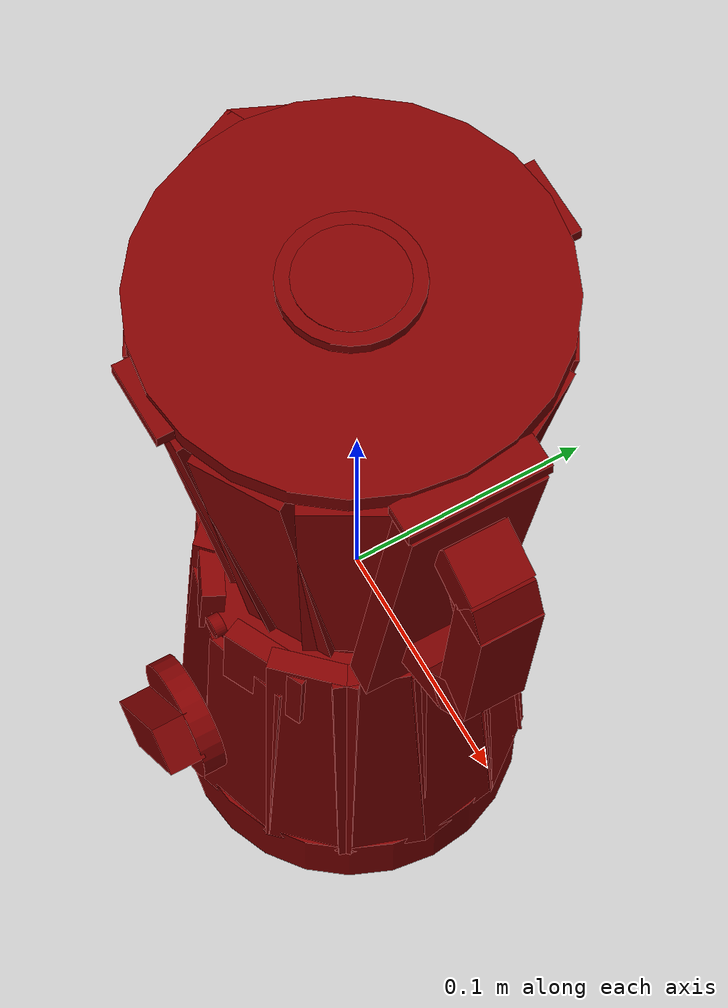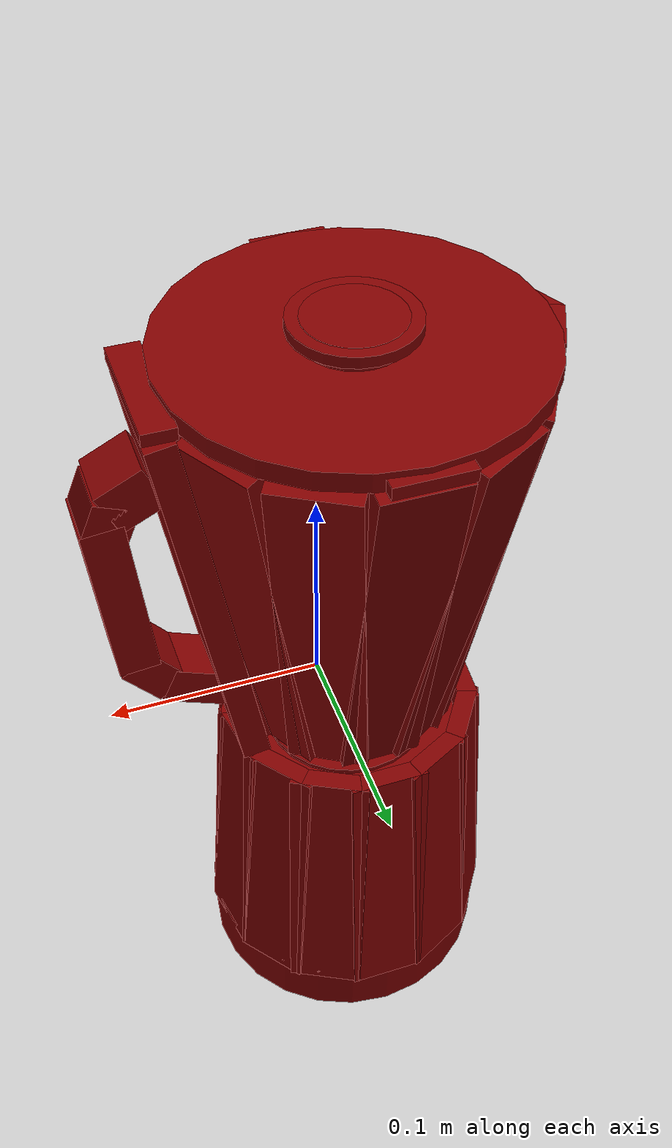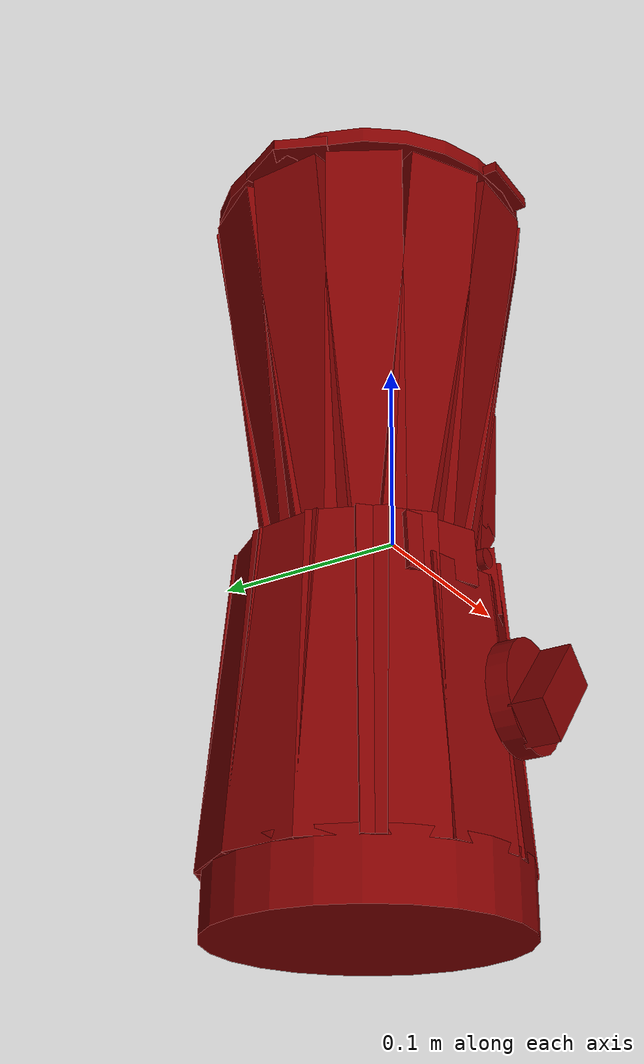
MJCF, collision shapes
<?xml version='1.0' encoding='UTF-8'?>
<mujoco model="model">
  <option timestep="0.002" gravity="0.0 0.0 -9.81"/>
  <compiler angle="radian"/>
  <asset>
    <mesh file="visuals/Blade001.obj" name="Blade001_vis"/>
    <mesh file="visuals/Body001.obj" name="Body001_vis"/>
    <mesh file="visuals/Button001.obj" name="Button001_vis"/>
    <mesh file="visuals/Handle001.obj" name="Handle001_vis"/>
    <mesh file="visuals/Jug001.obj" name="Jug001_vis"/>
    <mesh file="visuals/Jug001_Clear.obj" name="Jug001_Clear_vis"/>
    <mesh file="visuals/Knob001.obj" name="Knob001_vis"/>
    <mesh file="visuals/Lid001.obj" name="Lid001_vis"/>
    <texture file="visuals/T_BC001.png" name="Body001_material" type="2d"/>
    <material name="Body001_material" rgba="1 1 1 1.0" texture="Body001_material" shininess="0.1472135901451111" specular="1.5"/>
    <texture file="visuals/T_BC001.png" name="Button001_material" type="2d"/>
    <material name="Button001_material" rgba="1 1 1 1.0" texture="Button001_material" shininess="0.4472135901451111" specular="0.3103448502657381"/>
    <texture file="visuals/T_BC001.png" name="Jug001_Clear_material" type="2d"/>
    <material name="Jug001_Clear_material" rgba="1 1 1 0.699999988079071" texture="Jug001_Clear_material" shininess="0.5" specular="0.3103448502657381"/>
    <texture file="visuals/T_BC001.png" name="Blade001_material" type="2d"/>
    <material name="Blade001_material" rgba="1 1 1 1.0" texture="Blade001_material" shininess="0.4472135901451111" specular="1"/>
    <texture file="visuals/T_BC001.png" name="Handle001_material" type="2d"/>
    <material name="Handle001_material" rgba="1 1 1 1.0" texture="Handle001_material" shininess="0.4472135901451111" specular="0.3103448502657381"/>
    <texture file="visuals/T_BC001.png" name="Jug001_material" type="2d"/>
    <material name="Jug001_material" rgba="1 1 1 1.0" texture="Jug001_material" shininess="0.4472135901451111" specular="0.3103448502657381"/>
    <texture file="visuals/T_BC001.png" name="Lid001_material" type="2d"/>
    <material name="Lid001_material" rgba="1 1 1 1.0" texture="Lid001_material" shininess="0.4472135901451111" specular="0.3103448502657381"/>
    <texture file="visuals/T_BC001.png" name="Knob001_material" type="2d"/>
    <material name="Knob001_material" rgba="1 1 1 1.0" texture="Knob001_material" shininess="0.4472135901451111" specular="0.3103448502657381"/>
  </asset>
  <default>
    <default class="visual">
      <geom conaffinity="0" contype="0" group="1" type="mesh"/>
    </default>
    <default class="collision">
      <geom group="0" rgba="0.5 0 0 0.5"/>
    </default>
    <default class="spawn">
      <geom group="0" rgba="1 1 1 0.5" contype="0" conaffinity="0"/>
      <site group="0" rgba="1 1 1 0.5"/>
    </default>
    <default class="region">
      <geom group="1" conaffinity="0" contype="0" rgba="0 1 0 0"/>
    </default>
  </default>
  <worldbody>
    <body>
      <body name="object">
        <geom mesh="Body001_vis" type="mesh" solimp="0.998 0.998 0.001" solref="0.001 1" friction="0.95 0.3 0.1" class="visual" material="Body001_material"/>
        <geom class="collision" type="cylinder" pos="-0.01364894 0.00517901 -0.17729765" size="0.07223193347454071 0.01565600000321865" quat="1.0 0.0 0.0 0.0"/>
        <geom class="collision" type="cylinder" pos="-0.01364892 0.00517901 -0.10186557" size="0.059829890727996826 0.0677737444639206" quat="1.0 0.0 0.0 0.0"/>
        <geom class="collision" type="box" pos="-0.07513081 0.01196584 -0.09163070" size="0.00474097765982151 0.018581919372081757 0.07518734037876129" quat="0.9983850717544556 0.001589016173966229 0.03639443591237068 -0.04359044134616852"/>
        <geom class="collision" type="box" pos="-0.04137623 0.06109778 -0.09163070" size="0.00474097765982151 0.018581921234726906 0.07518734037876129" quat="0.8520742058753967 0.01903415098786354 0.03106090985238552 -0.52215176820755"/>
        <geom class="collision" type="box" pos="-0.01340979 0.06755958 -0.09163070" size="0.004740977194160223 0.018581919372081757 0.07518734037876129" quat="0.706637442111969 0.025759262964129448 0.025759262964129448 -0.706637442111969"/>
        <geom class="collision" type="box" pos="-0.06460671 0.04089657 -0.09163070" size="0.004740977194160223 0.018581919372081757 0.07518734037876129" quat="0.9556699991226196 0.01065084058791399 0.03483732417225838 -0.29217764735221863"/>
        <geom class="collision" type="box" pos="-0.07030949 -0.01843974 -0.09163070" size="0.004740977194160223 0.018581919372081757 0.07518734037876129" quat="0.9774983525276184 -0.007574035320430994 0.03563303127884865 0.20777370035648346"/>
        <geom class="collision" type="box" pos="-0.05777650 -0.03701354 -0.09163070" size="0.004740977194160223 0.018581919372081757 0.07518734037876129" quat="0.9232662916183472 -0.013940813019871712 0.03365609422326088 0.38242942094802856"/>
        <geom class="collision" type="box" pos="0.01444209 0.06062059 -0.09163070" size="0.00474097765982151 0.018581919372081757 0.07518734037876129" quat="0.5221518278121948 0.031060902401804924 0.019034147262573242 -0.8520742058753967"/>
        <geom class="collision" type="box" pos="0.03483135 0.04351816 -0.09163070" size="0.004740977194160223 0.018581919372081757 0.07518734037876129" quat="0.32535216212272644 0.03444439172744751 0.011860158294439316 -0.9448909163475037"/>
        <geom class="collision" type="box" pos="0.04669719 0.01624186 -0.09163070" size="0.004740977194160223 0.018581919372081757 0.07518734037876129" quat="0.08709795027971268 0.03629047051072121 0.0031750064808875322 -0.9955334663391113"/>
        <geom class="collision" type="box" pos="0.04401952 -0.01442692 -0.09163070" size="0.004740977194160223 0.018581919372081757 0.07518734037876129" quat="0.16493791341781616 -0.03592948243021965 0.006012528203427792 0.985630989074707"/>
        <geom class="collision" type="box" pos="0.02992116 -0.03699794 -0.09163070" size="0.004740977194160223 0.018581919372081757 0.07518734037876129" quat="0.3743578791618347 -0.03377646952867508 0.01364657748490572 0.9265684485435486"/>
        <geom class="collision" type="box" pos="0.00436888 -0.05326415 -0.10183717" size="0.004860866814851761 0.018987733870744705 0.0649624690413475" quat="0.5873950719833374 -0.029471756890416145 0.021412484347820282 0.8084800243377686"/>
        <geom class="collision" type="box" pos="-0.03054678 -0.05387982 -0.10183717" size="0.004740977194160223 0.018581919372081757 0.06495371460914612" quat="0.7928267121315002 -0.022176628932356834 0.02890114299952984 0.6083573698997498"/>
        <geom class="collision" type="box" pos="0.01075822 -0.04574376 -0.03591481" size="0.00474097765982151 0.018581917509436607 0.016848616302013397" quat="0.5295674204826355 -0.030893627554178238 0.01930447481572628 0.8474852442741394"/>
        <geom class="collision" type="box" pos="-0.03857974 -0.04552223 -0.03288599" size="0.004740977194160223 0.018581919372081757 0.014263604767620564" quat="0.8428314924240112 -0.01957334391772747 0.03072398342192173 0.5369431972503662"/>
        <body name="Button001">
          <joint axis="0.0 1.0 0.0" pos="-0.01376783 -0.05584328 -0.02839275" limited="true" name="Button001_joint" range="0.0 0.0013" type="slide" damping="1" frictionloss="1" armature=".01" stiffness="0.05"/>
          <geom mesh="Button001_vis" type="mesh" solimp="0.998 0.998 0.001" solref="0.001 1" friction="0.95 0.3 0.1" class="visual" material="Button001_material"/>
          <geom class="collision" type="cylinder" pos="-0.01373722 -0.05575219 -0.02841941" size="0.004705463536083698 0.0024300196673721075" quat="0.7071068286895752 -0.7071067690849304 -0.0 0.0"/>
        </body>
        <body name="Jug001_Clear">
          <geom class="region" name="reg_int" type="box" pos="-0.013648935000000001 0.005179005 0.066261555" size="0.026692025 0.026692025 0.081107445"/>
          <joint axis="0.0 0.0 1.0" pos="0.00000001 0.00428046 0.07791832" limited="true" name="Jug001_Clear_joint" range="0.0 0.05" type="slide" damping="1" frictionloss="1" armature=".01" stiffness="0.05"/>
          <geom mesh="Jug001_Clear_vis" type="mesh" solimp="0.998 0.998 0.001" solref="0.001 1" friction="0.95 0.3 0.1" class="visual" material="Jug001_Clear_material"/>
          <geom class="collision" type="box" pos="-0.01340979 -0.05356316 0.07928143" size="0.004740975797176361 0.018581919372081757 0.09355513006448746" quat="0.7044395804405212 0.0613589882850647 0.0613589882850647 -0.7044395208358765"/>
          <geom class="collision" type="box" pos="-0.01340978 0.06392115 0.07928143" size="0.004740975797176361 0.018581919372081757 0.09355513006448746" quat="0.7044395804405212 -0.0613589882850647 0.0613589882850647 0.7044395208358765"/>
          <geom class="collision" type="box" pos="-0.01340978 0.06392115 0.07928143" size="0.004740975797176361 0.018581919372081757 0.09355513006448746" quat="0.7044395804405212 -0.0613589882850647 0.0613589882850647 0.7044395208358765"/>
          <geom class="collision" type="box" pos="-0.01340979 -0.05356316 0.07928143" size="0.004740975797176361 0.018581919372081757 0.09355513006448746" quat="0.7044395804405212 0.0613589882850647 0.0613589882850647 -0.7044395208358765"/>
          <geom class="collision" type="box" pos="-0.07215194 0.00517899 0.07928143" size="0.004740975797176361 0.018581919372081757 0.09355513751506805" quat="7.475989605154609e-08 0.08677461743354797 1.3479709570773935e-09 -0.9962279796600342"/>
          <geom class="collision" type="box" pos="0.04533237 0.00517900 0.07928143" size="0.004740975797176361 0.018581919372081757 0.09355513006448746" quat="0.9962279796600342 -5.203319997093558e-09 0.08677471429109573 4.5322723352114735e-10"/>
          <geom class="collision" type="box" pos="0.03746241 0.03455008 0.07928143" size="0.004740975797176361 0.018581919372081757 0.09355513006448746" quat="0.9622822999954224 -0.02245895378291607 0.08381793648004532 0.2578427791595459"/>
          <geom class="collision" type="box" pos="-0.06428199 -0.02419209 0.07928143" size="0.004740975797176361 0.018581919372081757 0.09355513751506805" quat="0.2578427791595459 0.08381803333759308 0.02245897427201271 -0.9622822999954224"/>
          <geom class="collision" type="box" pos="-0.04278086 -0.04569321 0.07928143" size="0.004740975797176361 0.018581919372081757 0.09355513751506805" quat="0.49811404943466187 0.07514900714159012 0.043387334793806076 -0.8627586960792542"/>
          <geom class="collision" type="box" pos="0.01596129 0.05605120 0.07928143" size="0.004740975797176361 0.018581919372081757 0.09355513751506805" quat="0.8627587556838989 -0.04338733106851578 0.07514902949333191 0.4981139600276947"/>
          <geom class="collision" type="box" pos="-0.04278086 0.05605120 0.07928143" size="0.004740975797176361 0.018581919372081757 0.09355513751506805" quat="0.49811404943466187 -0.07514900714159012 0.043387334793806076 0.8627586960792542"/>
          <geom class="collision" type="box" pos="0.01596129 -0.04569320 0.07928143" size="0.004740975797176361 0.018581919372081757 0.09355513006448746" quat="0.8627587556838989 0.04338734969496727 0.07514909654855728 -0.4981139302253723"/>
          <geom class="collision" type="box" pos="0.03746241 -0.02419208 0.07928143" size="0.004740975797176361 0.018581919372081757 0.09355513006448746" quat="0.9622823596000671 0.022458944469690323 0.08381792157888412 -0.25784268975257874"/>
          <geom class="collision" type="box" pos="-0.06428199 0.03455007 0.07928143" size="0.004740975797176361 0.018581919372081757 0.09355513751506805" quat="0.2578427791595459 -0.08381803333759308 0.02245897427201271 0.9622822999954224"/>
          <geom class="collision" type="box" pos="0.08060288 0.00442261 0.13820456" size="0.011232865042984486 0.012886925600469112 0.010835387744009495" quat="0.9739777445793152 0.0 0.2266436368227005 0.0"/>
          <geom class="collision" type="box" pos="0.08998093 0.00442261 0.12905489" size="0.008133475668728352 0.012886925600469112 0.009914564900100231" quat="0.8326515555381775 0.0 0.5537972450256348 0.0"/>
          <geom class="collision" type="box" pos="0.09003628 0.00442261 0.08520831" size="0.04113192483782768 0.012886925600469112 0.00918785110116005" quat="0.6727584004402161 3.2991174236940424e-09 0.7398622632026672 -2.8109128358266844e-09"/>
          <geom class="collision" type="box" pos="0.08013169 0.00442261 0.03771976" size="0.012385156936943531 0.012886925600469112 0.00875075999647379" quat="0.4286668002605438 0.0 0.9034626483917236 0.0"/>
          <geom class="collision" type="box" pos="0.06025315 0.00442261 0.02319772" size="0.015387085266411304 0.012886925600469112 0.009129141457378864" quat="0.2087034434080124 0.0 0.9779789447784424 0.0"/>
          <body name="Blade001">
            <joint axis="0.0 0.0 1.0" pos="-0.01393533 0.00608437 -0.02500419" limited="false" name="Blade001_joint" range="0 360" type="hinge" damping="1" frictionloss="1" armature=".01" stiffness="0.05"/>
            <geom mesh="Blade001_vis" type="mesh" solimp="0.998 0.998 0.001" solref="0.001 1" friction="0.95 0.3 0.1" class="visual" material="Blade001_material"/>
            <geom class="collision" type="cylinder" pos="-0.01364893 0.00517901 -0.02543145" size="0.003170922864228487 0.004099421203136444" quat="1.0 0.0 0.0 0.0"/>
            <geom class="collision" type="box" pos="-0.01410603 0.00418800 -0.02250797" size="0.014141938649117947 0.00791434571146965 0.0002459282986819744" quat="0.9841994047164917 0.0 0.0 0.17706358432769775"/>
            <geom class="collision" type="box" pos="0.00506045 0.01131501 -0.01903470" size="0.009196617640554905 0.0075520845130085945 0.00036561701563186944" quat="0.956265926361084 0.06398852914571762 -0.22334979474544525 0.17769597470760345"/>
            <geom class="collision" type="box" pos="-0.03441685 -0.00336454 -0.02532603" size="0.008302983827888966 0.007914342917501926 0.00034735887311398983" quat="0.9655296802520752 0.029465211555361748 -0.1717633605003357 0.19334332644939423"/>
            <geom class="collision" type="box" pos="-0.01410603 0.00418800 -0.02371466" size="0.014141938649117947 0.007914344780147076 0.0002824610273819417" quat="0.8216372132301331 0.0 -0.0 -0.570010781288147"/>
            <geom class="collision" type="box" pos="-0.00667013 -0.01570229 -0.01987419" size="0.008311481215059757 0.00791434571146965 0.0002459282986819744" quat="0.7972676753997803 -0.1377963125705719 -0.1986253559589386 -0.5531043410301208"/>
            <geom class="collision" type="box" pos="-0.02175518 0.02464871 -0.02674755" size="0.008314153179526329 0.007914344780147076 0.0002459282986819744" quat="0.8104860782623291 -0.09359202533960342 -0.13490740954875946 -0.5622747540473938"/>
          </body>
          <body name="Handle001">
            <geom mesh="Handle001_vis" type="mesh" solimp="0.998 0.998 0.001" solref="0.001 1" friction="0.95 0.3 0.1" class="visual" material="Handle001_material"/>
            <geom class="collision" type="box" pos="0.05502011 0.00517900 0.07935458" size="0.006446782033890486 0.027016857638955116 0.094341941177845" quat="0.9966984391212463 0.0 0.08119235932826996 0.0"/>
          </body>
          <body name="Jug001">
            <geom mesh="Jug001_vis" type="mesh" solimp="0.998 0.998 0.001" solref="0.001 1" friction="0.95 0.3 0.1" class="visual" material="Jug001_material"/>
            <geom class="collision" type="box" pos="-0.01340979 -0.05356316 0.07928143" size="0.004740975797176361 0.018581919372081757 0.09355513006448746" quat="0.7044395804405212 0.0613589882850647 0.0613589882850647 -0.7044395208358765"/>
            <geom class="collision" type="box" pos="-0.01340978 0.06392115 0.07928143" size="0.004740975797176361 0.018581919372081757 0.09355513006448746" quat="0.7044395804405212 -0.0613589882850647 0.0613589882850647 0.7044395208358765"/>
            <geom class="collision" type="box" pos="-0.01340978 0.06392115 0.07928143" size="0.004740975797176361 0.018581919372081757 0.09355513006448746" quat="0.7044395804405212 -0.0613589882850647 0.0613589882850647 0.7044395208358765"/>
            <geom class="collision" type="box" pos="-0.01340979 -0.05356316 0.07928143" size="0.004740975797176361 0.018581919372081757 0.09355513006448746" quat="0.7044395804405212 0.0613589882850647 0.0613589882850647 -0.7044395208358765"/>
            <geom class="collision" type="box" pos="-0.07215194 0.00517899 0.07928143" size="0.004740975797176361 0.018581919372081757 0.09355513751506805" quat="7.475989605154609e-08 0.08677461743354797 1.3479709570773935e-09 -0.9962279796600342"/>
            <geom class="collision" type="box" pos="0.04533237 0.00517900 0.07928143" size="0.004740975797176361 0.018581919372081757 0.09355513006448746" quat="0.9962279796600342 -5.203319997093558e-09 0.08677471429109573 4.5322723352114735e-10"/>
            <geom class="collision" type="box" pos="0.03746241 0.03455008 0.07928143" size="0.004740975797176361 0.018581919372081757 0.09355513006448746" quat="0.9622822999954224 -0.02245895378291607 0.08381793648004532 0.2578427791595459"/>
            <geom class="collision" type="box" pos="-0.06428199 -0.02419209 0.07928143" size="0.004740975797176361 0.018581919372081757 0.09355513751506805" quat="0.2578427791595459 0.08381803333759308 0.02245897427201271 -0.9622822999954224"/>
            <geom class="collision" type="box" pos="-0.04278086 -0.04569321 0.07928143" size="0.004740975797176361 0.018581919372081757 0.09355513751506805" quat="0.49811404943466187 0.07514900714159012 0.043387334793806076 -0.8627586960792542"/>
            <geom class="collision" type="box" pos="0.01596129 0.05605120 0.07928143" size="0.004740975797176361 0.018581919372081757 0.09355513751506805" quat="0.8627587556838989 -0.04338733106851578 0.07514902949333191 0.4981139600276947"/>
            <geom class="collision" type="box" pos="-0.04278086 0.05605120 0.07928143" size="0.004740975797176361 0.018581919372081757 0.09355513751506805" quat="0.49811404943466187 -0.07514900714159012 0.043387334793806076 0.8627586960792542"/>
            <geom class="collision" type="box" pos="0.01596129 -0.04569320 0.07928143" size="0.004740975797176361 0.018581919372081757 0.09355513006448746" quat="0.8627587556838989 0.04338734969496727 0.07514909654855728 -0.4981139302253723"/>
            <geom class="collision" type="box" pos="0.03746241 -0.02419208 0.07928143" size="0.004740975797176361 0.018581919372081757 0.09355513006448746" quat="0.9622823596000671 0.022458944469690323 0.08381792157888412 -0.25784268975257874"/>
            <geom class="collision" type="box" pos="-0.06428199 0.03455007 0.07928143" size="0.004740975797176361 0.018581919372081757 0.09355513751506805" quat="0.2578427791595459 -0.08381803333759308 0.02245897427201271 0.9622822999954224"/>
            <geom class="collision" type="box" pos="0.08060288 0.00442261 0.13820456" size="0.011232865042984486 0.012886925600469112 0.010835387744009495" quat="0.9739777445793152 0.0 0.2266436368227005 0.0"/>
            <geom class="collision" type="box" pos="0.08998093 0.00442261 0.12905489" size="0.008133475668728352 0.012886925600469112 0.009914564900100231" quat="0.8326515555381775 0.0 0.5537972450256348 0.0"/>
            <geom class="collision" type="box" pos="0.09003628 0.00442261 0.08520831" size="0.04113192483782768 0.012886925600469112 0.00918785110116005" quat="0.6727584004402161 3.2991174236940424e-09 0.7398622632026672 -2.8109128358266844e-09"/>
            <geom class="collision" type="box" pos="0.08013169 0.00442261 0.03771976" size="0.012385156936943531 0.012886925600469112 0.00875075999647379" quat="0.4286668002605438 0.0 0.9034626483917236 0.0"/>
            <geom class="collision" type="box" pos="0.06025315 0.00442261 0.02319772" size="0.015387085266411304 0.012886925600469112 0.009129141457378864" quat="0.2087034434080124 0.0 0.9779789447784424 0.0"/>
            <geom class="collision" type="cylinder" pos="-0.01364892 0.00517901 -0.03183776" size="0.03966093435883522 0.0012146634981036186" quat="1.0 0.0 0.0 0.0"/>
          </body>
          <body name="Lid001">
            <joint axis="0.0 0.0 1.0" pos="0.07760211 0.00428044 0.17470604" limited="true" name="Lid001_joint" range="0.0 0.05" type="slide" damping="1" frictionloss="1" armature=".01" stiffness="0.05"/>
            <geom mesh="Lid001_vis" type="mesh" solimp="0.998 0.998 0.001" solref="0.001 1" friction="0.95 0.3 0.1" class="visual" material="Lid001_material"/>
            <geom class="collision" type="cylinder" pos="-0.01364894 0.00517901 0.17990708" size="0.08047248423099518 0.00426448555663228" quat="1.0 0.0 0.0 0.0"/>
            <geom class="collision" type="cylinder" pos="-0.01364892 0.00517900 0.18506922" size="0.021449467167258263 0.009426616132259369" quat="1.0 0.0 0.0 0.0"/>
            <geom class="collision" type="box" pos="0.07030737 0.00457389 0.17848375" size="0.0071110534481704235 0.028332218527793884 0.0028181890957057476" quat="1.0 0.0 0.0 0.0"/>
            <geom class="collision" type="cylinder" pos="-0.01364892 0.00517900 0.19177140" size="0.026944704353809357 0.002491123741492629" quat="1.0 0.0 0.0 0.0"/>
            <geom class="collision" type="box" pos="-0.01392014 -0.07526601 0.17848375" size="0.016500504687428474 0.0049792188219726086 0.0028181872330605984" quat="1.0 0.0 0.0 0.0"/>
            <geom class="collision" type="box" pos="-0.01392014 0.08397532 0.17848375" size="0.016500504687428474 0.0049792188219726086 0.002818188164383173" quat="1.0 0.0 0.0 0.0"/>
            <geom class="collision" type="box" pos="-0.09116238 0.01378270 0.17702553" size="0.0071110534481704235 0.013324333354830742 0.0028181890957057476" quat="0.978147566318512 0.0 -0.0 -0.20791172981262207"/>
            <geom class="collision" type="box" pos="-0.09095610 -0.00419749 0.17702553" size="0.0071110534481704235 0.013324332423508167 0.0028181890957057476" quat="0.9762960076332092 0.0 0.0 0.2164396494626999"/>
          </body>
        </body>
        <body name="Knob001">
          <joint axis="0.0 1.0 0.0" pos="-0.01317398 -0.07470910 -0.09942290" limited="true" name="Knob001_joint" range="0.0 4.799655442984406" type="hinge" damping="0.05" armature="0.001"/>
          <geom mesh="Knob001_vis" type="mesh" solimp="0.998 0.998 0.001" solref="0.001 1" friction="0.95 0.3 0.1" class="visual" material="Knob001_material"/>
          <geom class="collision" type="cylinder" pos="-0.01364893 -0.07254580 -0.09890006" size="0.025688841938972473 0.005045394878834486" quat="0.7071068286895752 -0.7071067690849304 -0.0 0.0"/>
          <geom class="collision" type="box" pos="-0.01317081 -0.08396378 -0.09950612" size="0.010556374676525593 0.007968936115503311 0.023776941001415253" quat="0.3608556091785431 -4.1255592719835477e-08 -0.9326217174530029 -7.759047093713889e-08"/>
        </body>
        <geom class="region" name="reg_main" type="box" pos="-0.011913235000000001 0.004331044999999999 0.0" size="0.09066411499999999 0.085063515 0.19429822"/>
      </body>
    </body>
  </worldbody>
  <actuator>
    <motor name="Button001_joint_actuator" joint="Button001_joint" gear="0.5"/>
    <motor name="Jug001_Clear_joint_actuator" joint="Jug001_Clear_joint" gear="70"/>
    <motor name="Knob001_joint_actuator" joint="Knob001_joint" gear="10"/>
    <motor name="Blade001_joint_actuator" joint="Blade001_joint" gear="20"/>
    <motor name="Lid001_joint_actuator" joint="Lid001_joint" gear="20"/>
  </actuator>
</mujoco>
